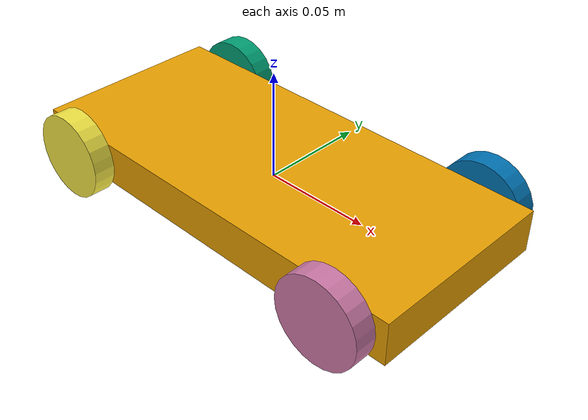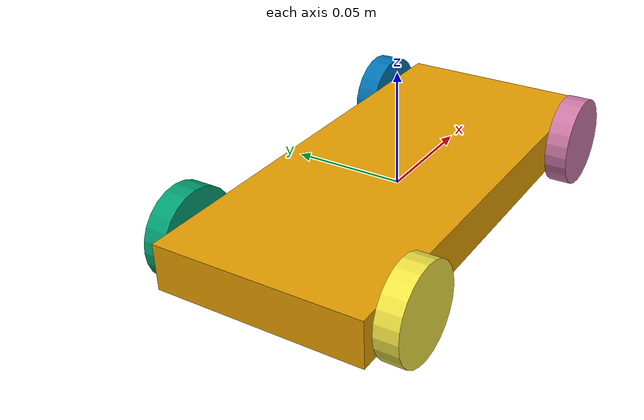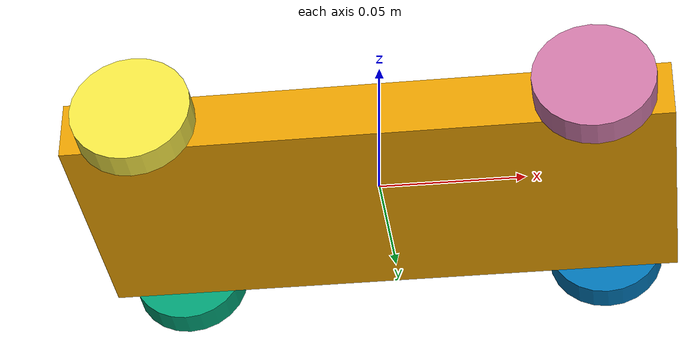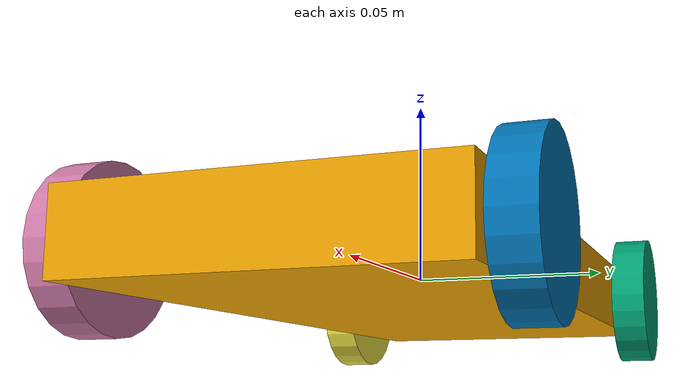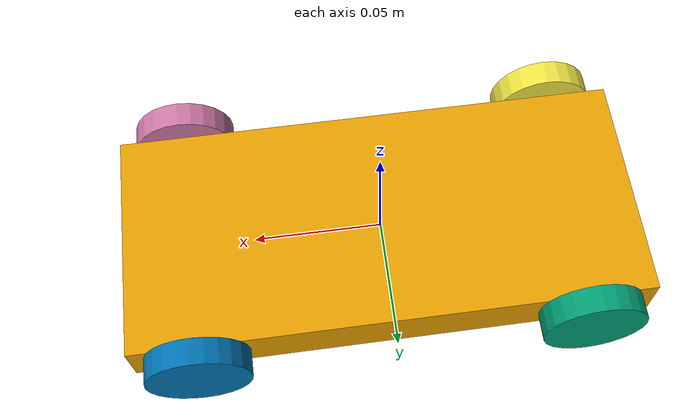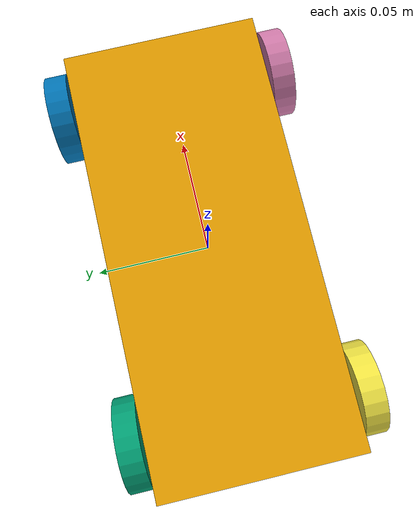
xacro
<?xml version="1.0"?>
<robot name="home_bots_mouse_droid" xmlns:xacro="http://ros.org/wiki/xacro">

    <xacro:include filename="wheels.urdf.xacro" />

    <xacro:property name="wheel_radius" value="0.02" />
    <xacro:property name="wheel_thickness" value="0.01" />
    <xacro:property name="track_width" value="0.1" />
    <xacro:property name="wheel_base" value="0.15" />

    <link name="base_link">
        <visual>
            <geometry>
                <box size="0.2 ${track_width - wheel_thickness} 0.02" />
            </geometry>
        </visual>
    </link>

    <link name="base_footprint"></link>
    <joint name="base_footprint_joint" type="fixed">
        <parent link="base_link" />
        <child link="base_footprint" />
        <origin xyz="0 0 -${wheel_radius}" />
    </joint>

    <xacro:wheel name="left_rear_wheel" direction="1" radius="${wheel_radius}"
        thickness="${wheel_thickness}">
        <parent link="base_link" />
        <origin xyz="-${wheel_base/2} ${(track_width-wheel_thickness)/2} 0" rpy="-${pi/2} 0 0" />
    </xacro:wheel>

    <xacro:wheel name="right_rear_wheel" direction="-1" radius="${wheel_radius}"
        thickness="${wheel_thickness}">
        <parent link="base_link" />
        <origin xyz="-${wheel_base/2} -${(track_width-wheel_thickness)/2} 0" rpy="${pi/2} 0 0" />
    </xacro:wheel>

    <xacro:wheel_steered name="left_front_wheel" direction="1" radius="${wheel_radius}"
        thickness="${wheel_thickness}">
        <parent link="base_link" />
        <origin xyz="${wheel_base/2} ${(track_width-wheel_thickness)/2} 0" rpy="-${pi/2} 0 0" />
    </xacro:wheel_steered>

    <xacro:wheel_steered name="right_front_wheel" direction="-1" radius="${wheel_radius}"
        thickness="${wheel_thickness}">
        <parent link="base_link" />
        <origin xyz="${wheel_base/2} -${(track_width-wheel_thickness)/2} 0" rpy="${pi/2} 0 0" />
    </xacro:wheel_steered>

</robot>

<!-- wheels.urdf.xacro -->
<robot xmlns:xacro="http://ros.org/wiki/xacro">

    <!-- BASIC -->
    <xacro:macro name="wheel_link" params="wheel_name radius thickness">
        <link name="${wheel_name}_link">
            <visual>
                <origin xyz="0 0 ${thickness/2}" />
                <geometry>
                    <cylinder length="${thickness}" radius="${radius}" />
                </geometry>
            </visual>
        </link>
    </xacro:macro>

    <xacro:macro name="wheel_joint"
        params="wheel_name direction:=1 friction:=0.0 damping:=0 *parent *origin">
        <joint name="${wheel_name}_joint" type="continuous">
            <axis xyz="0 0 ${direction}" />
            <xacro:insert_block name="parent" />
            <child link="${wheel_name}_link" />
            <xacro:insert_block name="origin" />
            <!-- dynamics-->
            <dynamics friction="{friction}" damping="${damping}" />
        </joint>
    </xacro:macro>

    <xacro:macro name="wheel"
        params="name direction:=1 radius:=0.02 thickness:=0.01 friction:=0.0 damping:=0 *parent *origin">
        <xacro:wheel_link wheel_name="${name}" radius="${radius}" thickness="${thickness}" />

        <xacro:wheel_joint wheel_name="${name}" direction="${direction}" friction="${friction}"
            damping="${damping}">
            <xacro:insert_block name="parent" />
            <xacro:insert_block name="origin" />
        </xacro:wheel_joint>
    </xacro:macro>

    <!-- STEERING -->
    <xacro:macro name="wheel_steering_link" params="wheel_name">
        <link name="${wheel_name}_steering_link"></link>
    </xacro:macro>

    <xacro:macro name="wheel_steering_joint"
        params="wheel_name direction:=1 friction=1.0 damping:=1 *parent *origin">
        <joint name="${wheel_name}_steering_joint" type="revolute">
            <axis xyz="0 ${direction} 0" />
            <xacro:insert_block name="parent" />
            <child link="${wheel_name}_steering_link" />
            <xacro:insert_block name="origin" />
            <!-- limits -->
            <limit effort="100" lower="-0.41" upper="0.41" velocity="0.5" />
            <!-- dynamics-->
            <dynamics friction="${friction}" damping="${damping}" />
        </joint>
    </xacro:macro>

    <xacro:macro name="wheel_steered"
        params="name direction:=1 radius:=0.02 thickness:=0.01 friction:=0.0 damping:=0 steering_friction:=1.0 steering_damping:=1 *parent *origin">
        <xacro:wheel_link wheel_name="${name}" radius="${radius}" thickness="${thickness}" />

        <xacro:wheel_steering_link wheel_name="${name}" />

        <xacro:wheel_joint wheel_name="${name}" direction="${direction}"
            friction="${friction}" damping="${damping}">
            <parent link="${name}_steering_link" />
            <origin xyz="0 0 0" rpy="0 0 0" />
        </xacro:wheel_joint>

        <xacro:wheel_steering_joint wheel_name="${name}" direction="${direction}"
            friction="${steering_friction}" damping="${steering_damping}">
            <xacro:insert_block name="parent" />
            <xacro:insert_block name="origin" />
        </xacro:wheel_steering_joint>
    </xacro:macro>

</robot>
